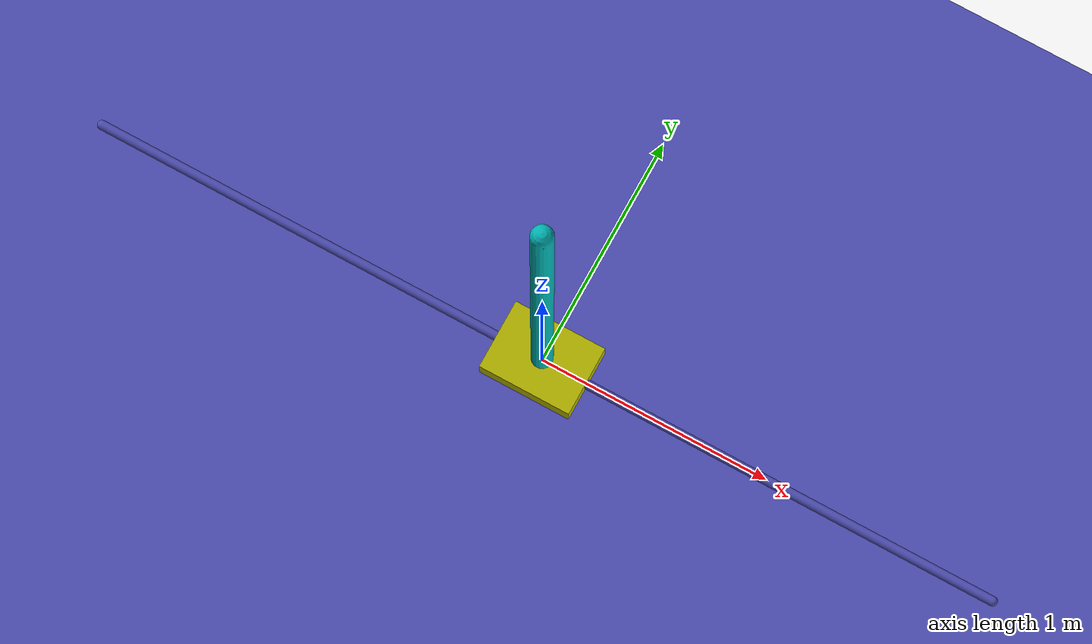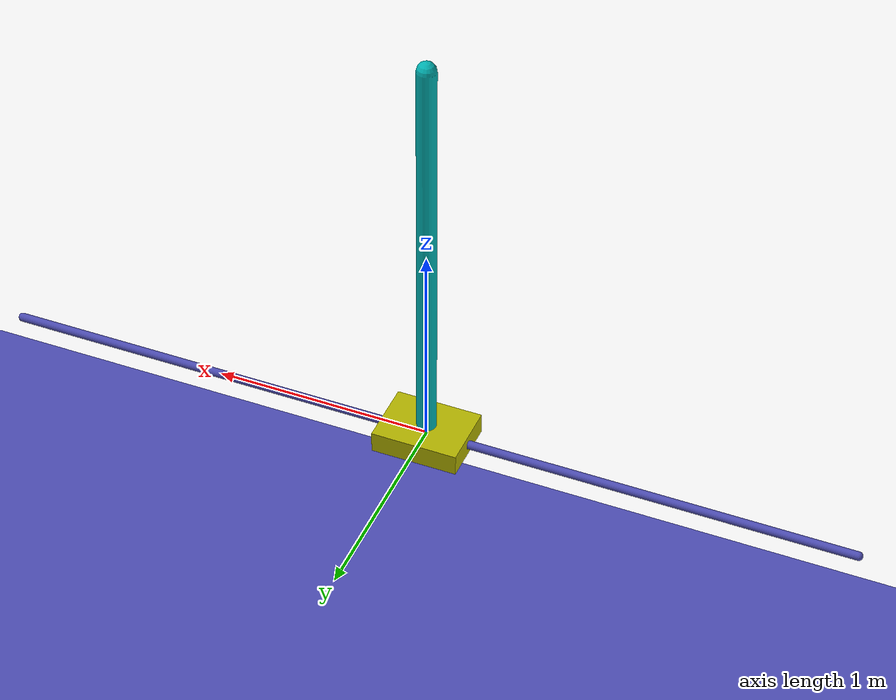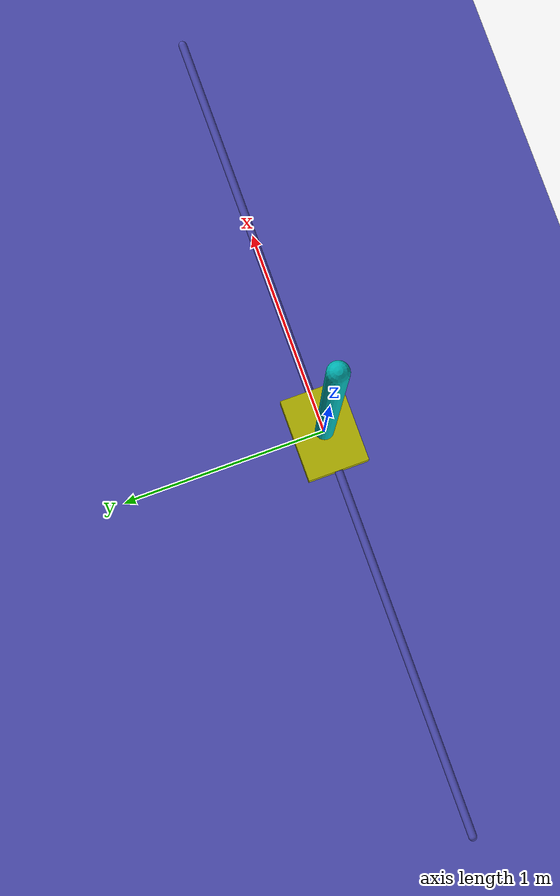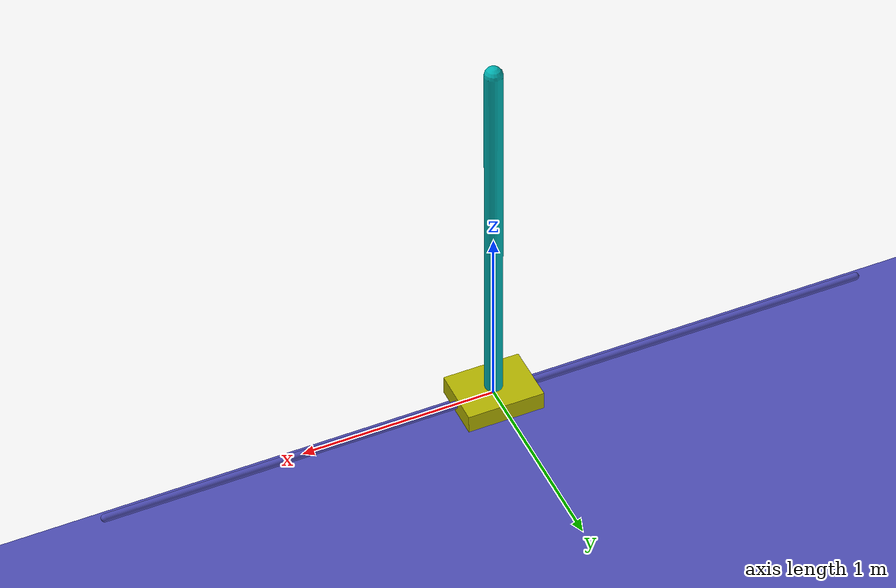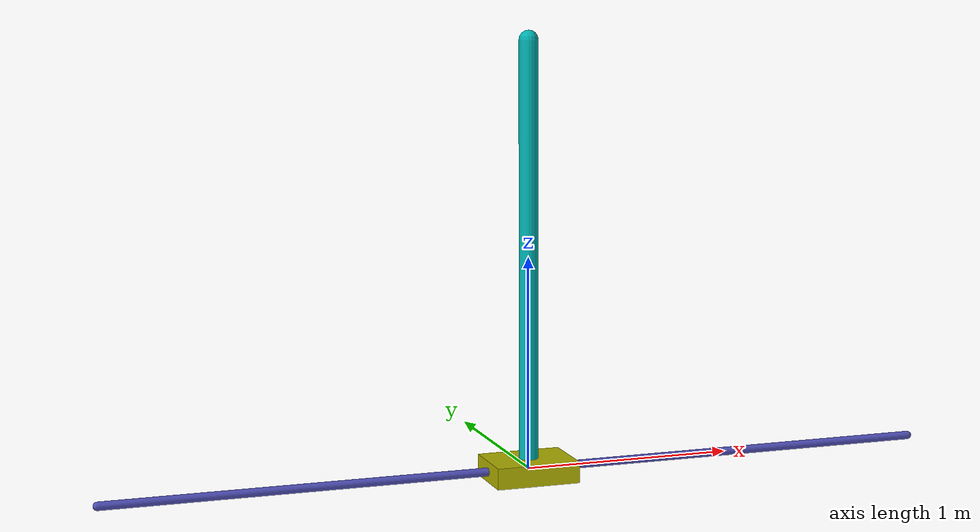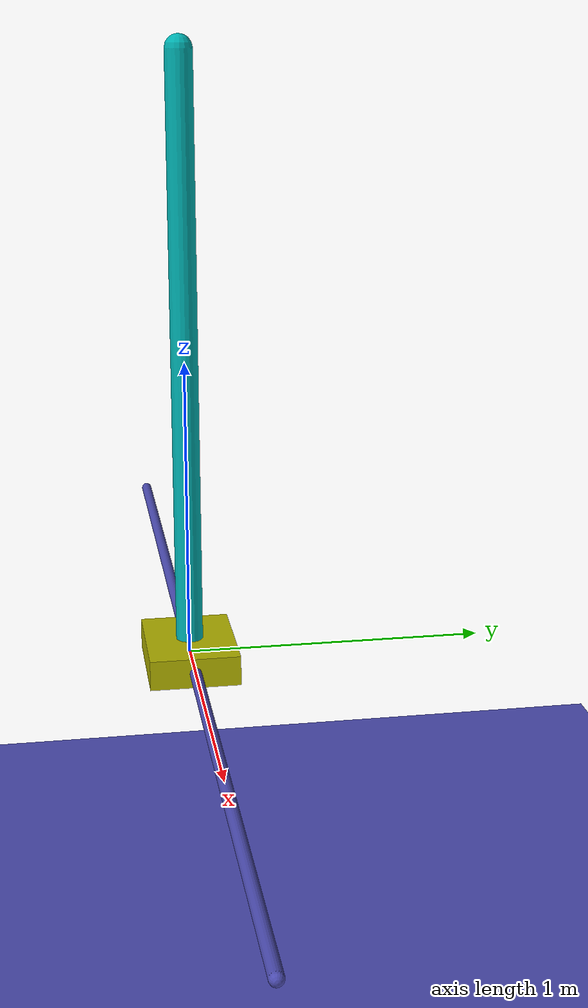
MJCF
<mujoco model="inverted pendulum">
	<compiler inertiafromgeom="true"/>
	<visual>
    	<headlight ambient=".4 .4 .4" diffuse=".8 .8 .8" specular="0.1 0.1 0.1"/>
    	<map znear=".01"/>
    	<quality shadowsize="2048"/>
    </visual>
	<default>
		<geom contype="0" friction="1 0.1 0.1" rgba="0.7 0.7 0 1"/>
		<tendon/>
		<motor ctrlrange="-3 3"/>
	</default>
	<option gravity="0 0 -9.81" integrator="RK4" timestep="0.01"/>
	<size nstack="3000"/>
	<worldbody>
		<light name="light" pos="0 0 5"/>
    	<camera name="fixed" pos="0 -4 0" zaxis="0 -1 0"/>
    	<camera name="lookatcart" mode="targetbody" target="cart" pos="0 -2 2"/>
		<geom name="floor" pos="0 0 -2" size="4 4 .2" type="plane" rgba="0.3 0.3 0.7 1"/>
		<geom name="rail" pos="0 0 0" quat="0.707 0 0.707 0" rgba="0.3 0.3 0.7 1" size="0.02 2" type="capsule"/>
		<body name="cart" pos="0 0 0">
			<joint axis="1 0 0" limited="true" name="slider" pos="0 0 0" range="-2 2" type="slide"/>
			<geom name="cart" type="box" size="0.2 0.15 0.05" mass="0.5"/>
			<body name="pole" pos="0 0 0">
				<joint name="hinge" type="hinge" axis="0 1 0"  damping="2e-6"/>
      			<geom name="pole" type="capsule" fromto="0 0 0 0 0 2" size="0.045" mass="0.5" rgba="0 0.7 0.7 1"/>
			</body>
		</body>
	</worldbody>
	<actuator>
		<motor name="slide" joint="slider" gear="10" ctrllimited="true" ctrlrange="-1 1" />
	</actuator>
</mujoco>
